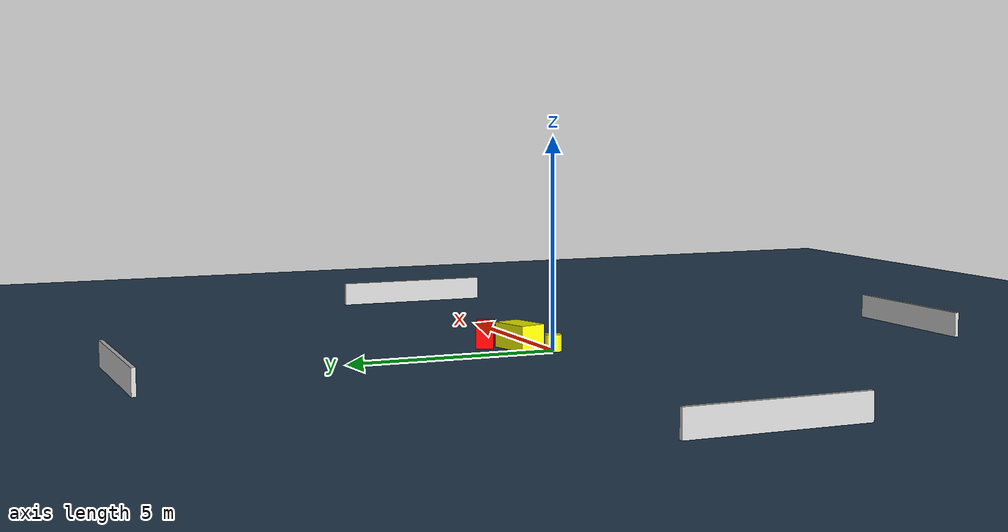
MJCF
<?xml version="1.0" ?>
<mujoco model="generated_environment">
  <option timestep="0.01" integrator="RK4" cone="elliptic"/>
  <default>
    <geom density="1"/>
  </default>
  <asset>
    <texture builtin="gradient" height="3072" name="skybox" rgb1="0.3 0.5 0.7" rgb2="0 0 0" type="skybox" width="512"/>
    <texture builtin="checker" height="300" name="groundplane" rgb1="0.2 0.3 0.4" rgb2="0.1 0.2 0.3" type="2d" width="300"/>
    <material name="groundplane" reflectance="0.2" texrepeat="5 5" texture="groundplane"/>
  </asset>
  <worldbody>
    <light dir="0 0 -1" directional="true" pos="0 0 1.5"/>
    <geom condim="3" friction="0.5 0.005 0.001" material="groundplane" name="floor" pos="0 0 0" size="0 0 0.05" type="plane"/>
    <body name="walls">
      <geom name="wall_1" condim="4" pos="-10.0 0.0 0.3" rgba="0.800000011920929 0.800000011920929 0.800000011920929 1.0" size="0.05 2.0 0.3" type="box"/>
      <geom name="wall_2" condim="4" pos="10.0 0.0 0.3" rgba="0.800000011920929 0.800000011920929 0.800000011920929 1.0" size="0.05 2.0 0.3" type="box"/>
      <geom name="wall_3" condim="4" pos="0.0 -10.0 0.3" rgba="0.800000011920929 0.800000011920929 0.800000011920929 1.0" size="2.0 0.05 0.3" type="box"/>
      <geom name="wall_4" condim="4" pos="0.0 10.0 0.3" rgba="0.800000011920929 0.800000011920929 0.800000011920929 1.0" size="2.0 0.05 0.3" type="box"/>
    </body>
    <body name="robot">
      <joint name="joint_x" type="slide" pos="0 0 0" axis="1 0 0"/>
      <joint name="joint_y" type="slide" pos="0 0 0" axis="0 1 0"/>
      <geom name="robot" type="cylinder" pos="0.0 0.0 0.2" size="0.2 0.2 0.0" mass="5.0" friction="1.0 0.005 0.0001" condim="4" rgba="1.0 1.0 0.0 1.0"/>
    </body>
    <body name="obstacle_1_movable">
      <geom name="obstacle_1_movable" condim="4" pos="0.723180706252586 0.5431297201118487 0.3" euler="0 0 15.98271393541653" friction="0.0 0.005 0.001" rgba="1.0 1.0 0.0 1.0" size="0.5108861069173153 0.33504895477857943 0.3" type="box" mass="0.1"/>
      <joint type="free"/>
    </body>
    <body name="obstacle_2_static">
      <geom name="obstacle_2_static" condim="4" pos="1.2809449528118175 1.196105563619625 0.3" euler="0 0 245.73156078611717" friction="0.0 0.005 0.001" rgba="1.0 0.0 0.0 1.0" size="0.20618261751955702 0.3542997261713766 0.3" type="box"/>
    </body>
  </worldbody>
  <actuator>
    <motor name="actuator_x" joint="joint_x" gear="1" ctrlrange="-1 1"/>
    <motor name="actuator_y" joint="joint_y" gear="1" ctrlrange="-1 1"/>
  </actuator>
</mujoco>
